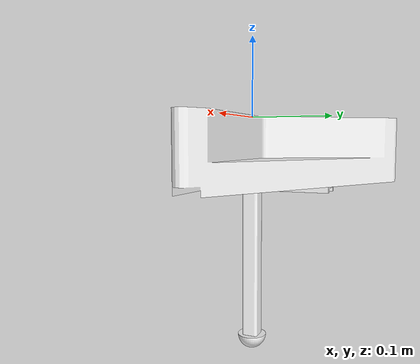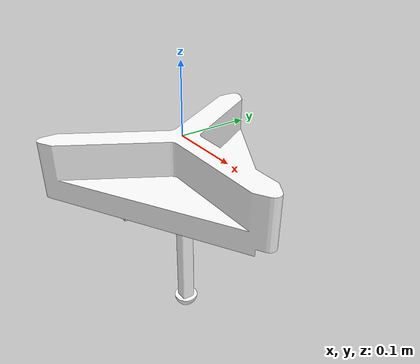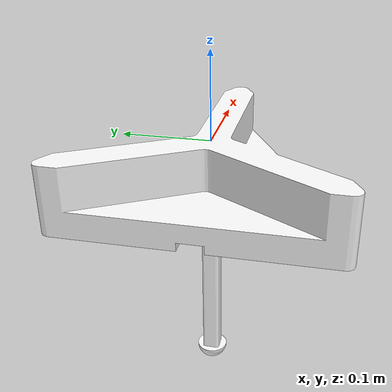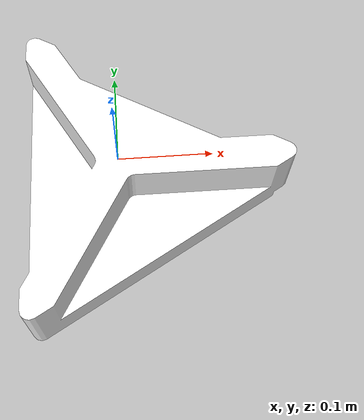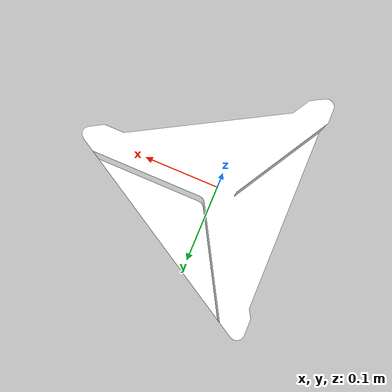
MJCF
<mujoco model="RLSLIP">
  <compiler angle="radian" meshdir="../meshes/"/>
  <asset>
    <mesh name="base_link" file="base_link.STL"/>
    <mesh name="xdof_Link" file="xdof_Link.STL"/>
    <mesh name="ydof_Link" file="ydof_Link.STL"/>
    <mesh name="zdof_Link" file="zdof_Link.STL"/>
  </asset>
  <worldbody>
    <body name="base_Link" pos="0 0 0">
      <inertial pos="-0.001404 0 -0.04959" quat="0 0 0 1" mass="2.6327" diaginertia="0.015649 0.014904 0.027811"/>
      <geom type="mesh" contype="0" conaffinity="0" group="1" density="0" rgba="1 1 1 1" mesh="base_link"/>
      <geom type="mesh" rgba="1 1 1 1" mesh="base_link"/>
      <body name="xdof_Link" pos="0 0 -0.072">
        <inertial pos="0 0 -0.011032" quat="0.5 0.5 -0.5 0.5" mass="0.025" diaginertia="9.9536e-05 9.6505e-05 4.3121e-06"/>
        <joint name="xdof_Joint" pos="0 0 0" axis="1 0 0" type="slide" limited="true" range="-0.075 0.075"/>
        <geom type="mesh" contype="0" conaffinity="0" group="1" density="0" rgba="1 1 1 1" mesh="xdof_Link"/>
        <body name="ydof_Link" pos="0 0 -0.013">
          <inertial pos="0 0 -0.097" mass="0.05" diaginertia="0.00016108 0.00016108 4.4136e-06"/>
          <joint name="ydof_Joint" pos="0 0 0" axis="0 -1 0" type="slide" limited="true" range="-0.075 0.075"/>
          <geom type="mesh" contype="0" conaffinity="0" group="1" density="0" rgba="1 1 1 1" mesh="ydof_Link"/>
          <body name="zdof_Link" pos="0 0 -0.194">
            <inertial pos="0 0 0.0046192" mass="0.02" diaginertia="7.069e-06 7.069e-06 1.7683e-06"/>
            <joint name="zdof_Joint" pos="0 0 0" axis="0 0 -1" type="slide" limited="true" range="0 0.075"/>
            <geom type="mesh" contype="0" conaffinity="0" group="1" density="0" rgba="1 1 1 1" mesh="zdof_Link"/>
            <geom type="mesh" rgba="1 1 1 1" mesh="zdof_Link"/>
          </body>
        </body>
      </body>
    </body>
  </worldbody>
</mujoco>
